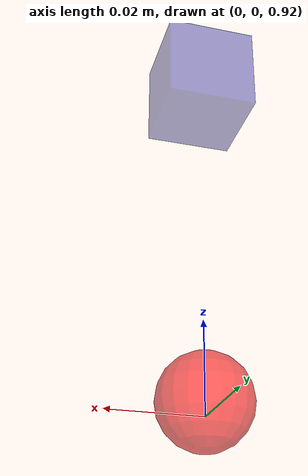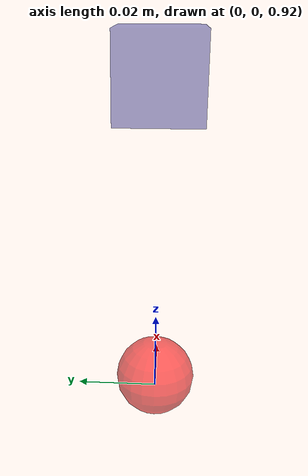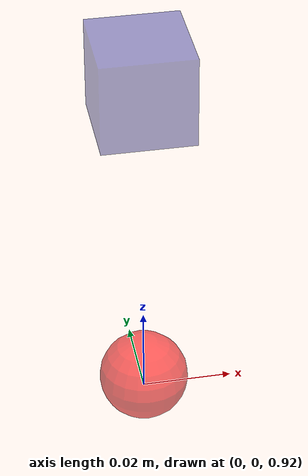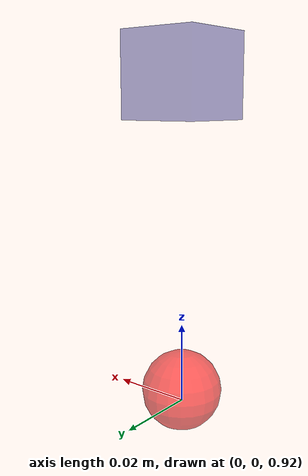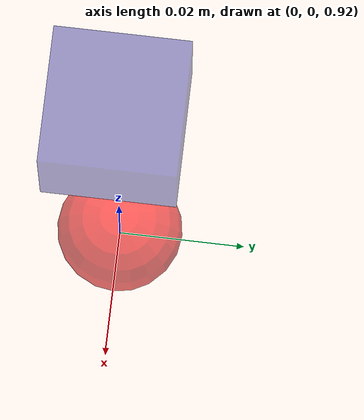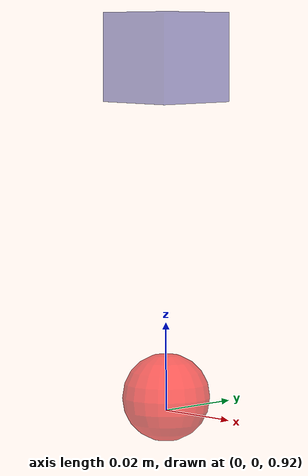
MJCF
<!-- 二阶震荡模型，用于学习仿真 -->

<mujoco model="v2_4">
  <compiler angle="radian"/>
  <option timestep="0.0005" iterations="1000"/>

  <default>
    <geom density="418"/>
  </default>

  <asset>
    <texture name="grid" type="2d" builtin="checker" rgb1=".1 .2 .3"
      rgb2=".2 .3 .4" width="300" height="300"/>
    <material name="grid" texture="grid" texrepeat="8 8" reflectance=".2"/>
  </asset>

  <worldbody>
    <light name="top" pos="0 0 5"/>
    <geom size="10 10 .01" type="plane" material="grid" friction="1 0.005 0.0001" mass="10"/>
    <camera name="fixed" pos="0 -1.3 1.2" xyaxes="1 0 0 0 1 2"/>

    <body name="base" pos="0 0 1">
      <geom type="box" size="0.01 0.01 0.01" rgba="0 0 0.5 0.4" mass="1"/>
        <body name="RB_MAA_FM_Link" pos="0 0 -0.077">
          <joint name="RB_MAA_SlideJoint" pos="0 0 0" axis="0 0 -1" type="slide" damping="11" stiffness="370" springref="0"/>
          <geom type="sphere" size="0.01" rgba="1 0 0 0.6" mass="0.34122"/>
        </body>
    </body>

  </worldbody>

  <!-- 增加在RB_BAA_LowerJoint等关节中加入8个位置控制器，要求增加位置限制 -->
  <actuator>
    <motor joint="RB_MAA_SlideJoint" ctrllimited="true" ctrlrange="-300 300" />
  </actuator>

  <!-- 建立并联关系，如 RB_BAA_LOLink 应该与 RB_Calf 连接 -->
  <equality>
  </equality>

  <sensor>
  </sensor>
</mujoco>
